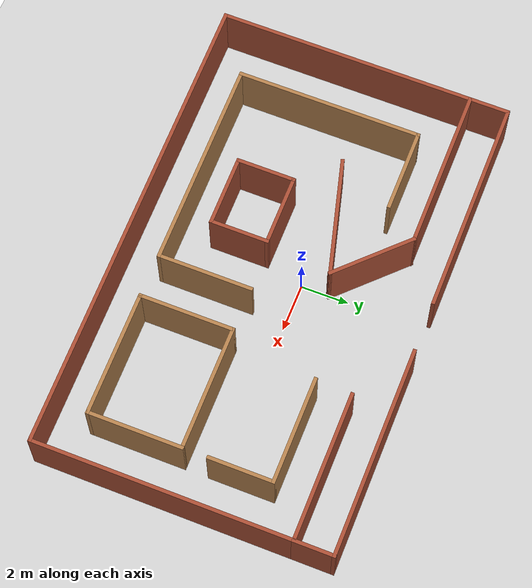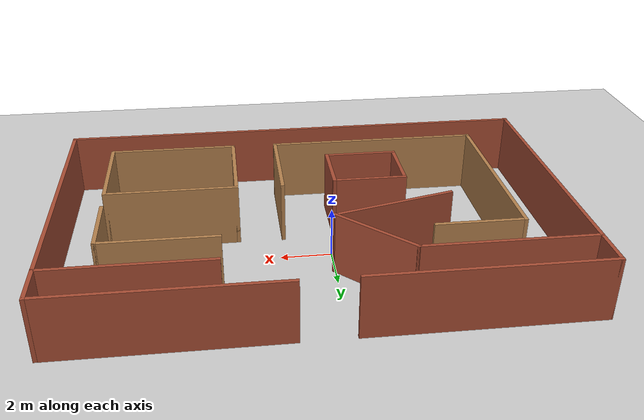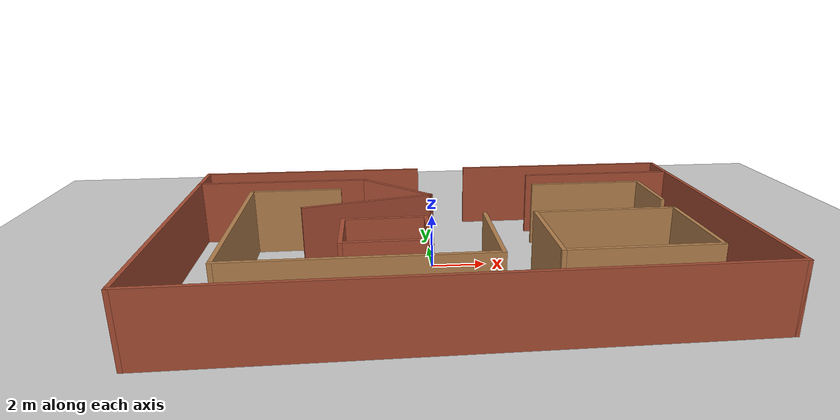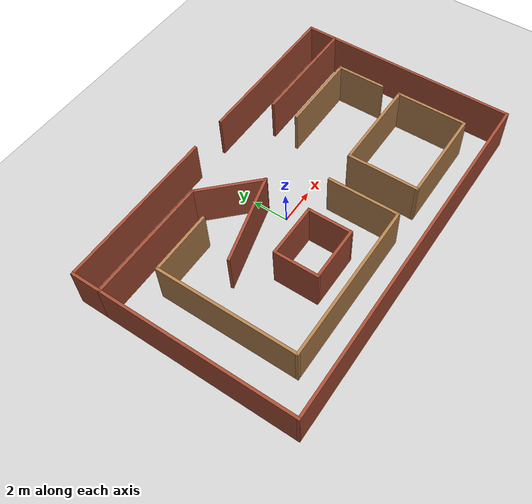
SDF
<sdf version="1.7">
 <world name="default">
  <scene><ambient>0.4 0.4 0.4 1</ambient><background>0.7 0.7 0.7 1</background><shadows>1</shadows></scene>
  <light name="sun" type="directional">
   <pose>0 0 10 0 -0 0</pose>
   <diffuse>0.8 0.8 0.8 1</diffuse>
   <specular>0.2 0.2 0.2 1</specular>
   <attenuation>
    <range>1000</range>
    <constant>0.9</constant>
    <linear>0.01</linear>
    <quadratic>0.001</quadratic>
   </attenuation>
   <direction>-0.5 0.1 -0.9</direction>
   <spot><inner_angle>0</inner_angle><outer_angle>0</outer_angle><falloff>0</falloff></spot>
  </light>
  <model name="ground_plane">
   <static>1</static>
   <link name="link">
    <collision name="collision">
     <geometry><plane><normal>0 0 1</normal><size>100 100</size></plane></geometry>
     <surface>
      <contact><collide_bitmask>65535</collide_bitmask></contact>
      <friction><ode><mu>100</mu><mu2>50</mu2></ode></friction>
     </surface>
    </collision>
    <visual name="visual">
     <cast_shadows>0</cast_shadows>
     <geometry><plane><normal>0 0 1</normal><size>100 100</size></plane></geometry>
     <material>
      <script><uri>file://media/materials/scripts/gazebo.material</uri><name>Gazebo/Grey</name></script>
     </material>
    </visual>
   </link>
  </model>
  <physics type="ode">
   <real_time_update_rate>1000</real_time_update_rate>
   <max_step_size>0.001</max_step_size>
   <real_time_factor>1</real_time_factor>
   <ode>
    <solver>
     <type>quick</type>
     <iters>150</iters>
     <precon_iters>0</precon_iters>
     <sor>1.4</sor>
     <use_dynamic_moi_rescaling>1</use_dynamic_moi_rescaling>
    </solver>
    <constraints>
     <cfm>1e-05</cfm>
     <erp>0.2</erp>
     <contact_max_correcting_vel>2000</contact_max_correcting_vel>
     <contact_surface_layer>0.01</contact_surface_layer>
    </constraints>
   </ode>
  </physics>
  <gravity>0 0 -9.8</gravity>
  <magnetic_field>6e-06 2.3e-05 -4.2e-05</magnetic_field>
  <atmosphere type="adiabatic"/>
  <spherical_coordinates>
   <surface_model>EARTH_WGS84</surface_model>
   <latitude_deg>0</latitude_deg>
   <longitude_deg>0</longitude_deg>
   <elevation>0</elevation>
   <heading_deg>0</heading_deg>
  </spherical_coordinates>
  <model name="my_world_1">
   <pose>0.678708 -0.772248 0 0 -0 0</pose>
   <link name="Wall_10">
    <collision name="Wall_10_Collision">
     <geometry><box><size>10.75 0.15 2.5</size></box></geometry>
     <pose>0 0 1.25 0 -0 0</pose>
    </collision>
    <visual name="Wall_10_Visual">
     <pose>0 0 1.25 0 -0 0</pose>
     <geometry><box><size>10.75 0.15 2.5</size></box></geometry>
     <material>
      <script><uri>file://media/materials/scripts/gazebo.material</uri><name>Gazebo/Bricks</name></script>
      <ambient>1 1 1 1</ambient>
     </material>
     <meta><layer>0</layer></meta>
    </visual>
    <pose>9.8 -0.8 0 0 -0 1.5708</pose>
   </link>
   <link name="Wall_12">
    <collision name="Wall_12_Collision">
     <geometry><box><size>6.75 0.15 2.5</size></box></geometry>
     <pose>0 0 1.25 0 -0 0</pose>
    </collision>
    <visual name="Wall_12_Visual">
     <pose>0 0 1.25 0 -0 0</pose>
     <geometry><box><size>6.75 0.15 2.5</size></box></geometry>
     <material>
      <script><uri>file://media/materials/scripts/gazebo.material</uri><name>Gazebo/Bricks</name></script>
      <ambient>1 1 1 1</ambient>
     </material>
     <meta><layer>0</layer></meta>
    </visual>
    <pose>-6.5 4.5 0 0 -0 0</pose>
   </link>
   <link name="Wall_14">
    <collision name="Wall_14_Collision">
     <geometry><box><size>6.25 0.15 2.5</size></box></geometry>
     <pose>0 0 1.25 0 -0 0</pose>
    </collision>
    <visual name="Wall_14_Visual">
     <pose>0 0 1.25 0 -0 0</pose>
     <geometry><box><size>6.25 0.15 2.5</size></box></geometry>
     <material>
      <script><uri>file://media/materials/scripts/gazebo.material</uri><name>Gazebo/Bricks</name></script>
      <ambient>1 1 1 1</ambient>
     </material>
     <meta><layer>0</layer></meta>
    </visual>
    <pose>6.75 4.5 0 0 -0 3.14159</pose>
   </link>
   <link name="Wall_16">
    <collision name="Wall_16_Collision">
     <geometry><box><size>3.75 0.15 2.5</size></box></geometry>
     <pose>0 0 1.25 0 -0 0</pose>
    </collision>
    <visual name="Wall_16_Visual">
     <pose>0 0 1.25 0 -0 0</pose>
     <geometry><box><size>3.75 0.15 2.5</size></box></geometry>
     <material>
      <script><uri>file://media/materials/scripts/gazebo.material</uri><name>Gazebo/Bricks</name></script>
      <ambient>1 1 1 1</ambient>
     </material>
     <meta><layer>0</layer></meta>
    </visual>
    <pose>-1.92721 3.22721 0 0 -0 -0.785398</pose>
   </link>
   <link name="Wall_17">
    <collision name="Wall_17_Collision">
     <geometry><box><size>5 0.15 2.5</size></box></geometry>
     <pose>0 0 1.25 0 -0 0</pose>
    </collision>
    <visual name="Wall_17_Visual">
     <pose>0 0 1.25 0 -0 0</pose>
     <geometry><box><size>5 0.15 2.5</size></box></geometry>
     <material>
      <script><uri>file://media/materials/scripts/gazebo.material</uri><name>Gazebo/Bricks</name></script>
      <ambient>1 1 1 1</ambient>
     </material>
     <meta><layer>0</layer></meta>
    </visual>
    <pose>-2.99679 1.32678 0 0 -0 -2.87979</pose>
   </link>
   <link name="Wall_19">
    <collision name="Wall_19_Collision">
     <geometry><box><size>4.5 0.15 2.5</size></box></geometry>
     <pose>0 0 1.25 0 -0 0</pose>
    </collision>
    <visual name="Wall_19_Visual">
     <pose>0 0 1.25 0 -0 0</pose>
     <geometry><box><size>4.5 0.15 2.5</size></box></geometry>
     <material>
      <script><uri>file://media/materials/scripts/gazebo.material</uri><name>Gazebo/Wood</name></script>
      <ambient>1 1 1 1</ambient>
     </material>
     <meta><layer>0</layer></meta>
    </visual>
    <pose>5.81402 2.99211 0 0 -0 0</pose>
   </link>
   <link name="Wall_20">
    <collision name="Wall_20_Collision">
     <geometry><box><size>2.75 0.15 2.5</size></box></geometry>
     <pose>0 0 1.25 0 -0 0</pose>
    </collision>
    <visual name="Wall_20_Visual">
     <pose>0 0 1.25 0 -0 0</pose>
     <geometry><box><size>2.75 0.15 2.5</size></box></geometry>
     <material>
      <script><uri>file://media/materials/scripts/gazebo.material</uri><name>Gazebo/Wood</name></script>
      <ambient>1 1 1 1</ambient>
     </material>
     <meta><layer>0</layer></meta>
    </visual>
    <pose>7.98902 1.69211 0 0 -0 -1.5708</pose>
   </link>
   <link name="Wall_22">
    <collision name="Wall_22_Collision">
     <geometry><box><size>4 0.15 2.5</size></box></geometry>
     <pose>0 0 1.25 0 -0 0</pose>
    </collision>
    <visual name="Wall_22_Visual">
     <pose>0 0 1.25 0 -0 0</pose>
     <geometry><box><size>4 0.15 2.5</size></box></geometry>
     <material>
      <script><uri>file://media/materials/scripts/gazebo.material</uri><name>Gazebo/Wood</name></script>
      <ambient>1 1 1 1</ambient>
     </material>
     <meta><layer>0</layer></meta>
    </visual>
    <pose>8.00145 -2.60372 0 0 -0 -1.5708</pose>
   </link>
   <link name="Wall_23">
    <collision name="Wall_23_Collision">
     <geometry><box><size>5.25 0.15 2.5</size></box></geometry>
     <pose>0 0 1.25 0 -0 0</pose>
    </collision>
    <visual name="Wall_23_Visual">
     <pose>0 0 1.25 0 -0 0</pose>
     <geometry><box><size>5.25 0.15 2.5</size></box></geometry>
     <material>
      <script><uri>file://media/materials/scripts/gazebo.material</uri><name>Gazebo/Wood</name></script>
      <ambient>1 1 1 1</ambient>
     </material>
     <meta><layer>0</layer></meta>
    </visual>
    <pose>5.45145 -4.52872 0 0 -0 3.14159</pose>
   </link>
   <link name="Wall_24">
    <collision name="Wall_24_Collision">
     <geometry><box><size>4 0.15 2.5</size></box></geometry>
     <pose>0 0 1.25 0 -0 0</pose>
    </collision>
    <visual name="Wall_24_Visual">
     <pose>0 0 1.25 0 -0 0</pose>
     <geometry><box><size>4 0.15 2.5</size></box></geometry>
     <material>
      <script><uri>file://media/materials/scripts/gazebo.material</uri><name>Gazebo/Wood</name></script>
      <ambient>1 1 1 1</ambient>
     </material>
     <meta><layer>0</layer></meta>
    </visual>
    <pose>2.90145 -2.60372 0 0 -0 1.5708</pose>
   </link>
   <link name="Wall_25">
    <collision name="Wall_25_Collision">
     <geometry><box><size>5.25 0.15 2.5</size></box></geometry>
     <pose>0 0 1.25 0 -0 0</pose>
    </collision>
    <visual name="Wall_25_Visual">
     <pose>0 0 1.25 0 -0 0</pose>
     <geometry><box><size>5.25 0.15 2.5</size></box></geometry>
     <material>
      <script><uri>file://media/materials/scripts/gazebo.material</uri><name>Gazebo/Wood</name></script>
      <ambient>1 1 1 1</ambient>
     </material>
     <meta><layer>0</layer></meta>
    </visual>
    <pose>5.45145 -0.67872 0 0 -0 0</pose>
   </link>
   <link name="Wall_27">
    <collision name="Wall_27_Collision">
     <geometry><box><size>4 0.15 2.5</size></box></geometry>
     <pose>0 0 1.25 0 -0 0</pose>
    </collision>
    <visual name="Wall_27_Visual">
     <pose>0 0 1.25 0 -0 0</pose>
     <geometry><box><size>4 0.15 2.5</size></box></geometry>
     <material>
      <script><uri>file://media/materials/scripts/gazebo.material</uri><name>Gazebo/Wood</name></script>
      <ambient>1 1 1 1</ambient>
     </material>
     <meta><layer>0</layer></meta>
    </visual>
    <pose>1.0854 -2.57712 0 0 -0 -1.5708</pose>
   </link>
   <link name="Wall_28">
    <collision name="Wall_28_Collision">
     <geometry><box><size>8.75 0.15 2.5</size></box></geometry>
     <pose>0 0 1.25 0 -0 0</pose>
    </collision>
    <visual name="Wall_28_Visual">
     <pose>0 0 1.25 0 -0 0</pose>
     <geometry><box><size>8.75 0.15 2.5</size></box></geometry>
     <material>
      <script><uri>file://media/materials/scripts/gazebo.material</uri><name>Gazebo/Wood</name></script>
      <ambient>1 1 1 1</ambient>
     </material>
     <meta><layer>0</layer></meta>
    </visual>
    <pose>-3.2146 -4.50212 0 0 -0 3.14159</pose>
   </link>
   <link name="Wall_29">
    <collision name="Wall_29_Collision">
     <geometry><box><size>7.75 0.15 2.5</size></box></geometry>
     <pose>0 0 1.25 0 -0 0</pose>
    </collision>
    <visual name="Wall_29_Visual">
     <pose>0 0 1.25 0 -0 0</pose>
     <geometry><box><size>7.75 0.15 2.5</size></box></geometry>
     <material>
      <script><uri>file://media/materials/scripts/gazebo.material</uri><name>Gazebo/Wood</name></script>
      <ambient>1 1 1 1</ambient>
     </material>
     <meta><layer>0</layer></meta>
    </visual>
    <pose>-7.5146 -0.70212 0 0 -0 1.5708</pose>
   </link>
   <link name="Wall_30">
    <collision name="Wall_30_Collision">
     <geometry><box><size>3.5 0.15 2.5</size></box></geometry>
     <pose>0 0 1.25 0 -0 0</pose>
    </collision>
    <visual name="Wall_30_Visual">
     <pose>0 0 1.25 0 -0 0</pose>
     <geometry><box><size>3.5 0.15 2.5</size></box></geometry>
     <material>
      <script><uri>file://media/materials/scripts/gazebo.material</uri><name>Gazebo/Wood</name></script>
      <ambient>1 1 1 1</ambient>
     </material>
     <meta><layer>0</layer></meta>
    </visual>
    <pose>-5.8396 3.09788 0 0 -0 0</pose>
   </link>
   <link name="Wall_32">
    <collision name="Wall_32_Collision">
     <geometry><box><size>2.5 0.15 2.5</size></box></geometry>
     <pose>0 0 1.25 0 -0 0</pose>
    </collision>
    <visual name="Wall_32_Visual">
     <pose>0 0 1.25 0 -0 0</pose>
     <geometry><box><size>2.5 0.15 2.5</size></box></geometry>
     <material>
      <script><uri>file://media/materials/scripts/gazebo.material</uri><name>Gazebo/Bricks</name></script>
      <ambient>1 1 1 1</ambient>
     </material>
     <meta><layer>0</layer></meta>
    </visual>
    <pose>-3.86224 -1.98672 0 0 -0 -1.5708</pose>
   </link>
   <link name="Wall_33">
    <collision name="Wall_33_Collision">
     <geometry><box><size>3 0.15 2.5</size></box></geometry>
     <pose>0 0 1.25 0 -0 0</pose>
    </collision>
    <visual name="Wall_33_Visual">
     <pose>0 0 1.25 0 -0 0</pose>
     <geometry><box><size>3 0.15 2.5</size></box></geometry>
     <material>
      <script><uri>file://media/materials/scripts/gazebo.material</uri><name>Gazebo/Bricks</name></script>
      <ambient>1 1 1 1</ambient>
     </material>
     <meta><layer>0</layer></meta>
    </visual>
    <pose>-2.43723 -3.16172 0 0 -0 0</pose>
   </link>
   <link name="Wall_34">
    <collision name="Wall_34_Collision">
     <geometry><box><size>2.5 0.15 2.5</size></box></geometry>
     <pose>0 0 1.25 0 -0 0</pose>
    </collision>
    <visual name="Wall_34_Visual">
     <pose>0 0 1.25 0 -0 0</pose>
     <geometry><box><size>2.5 0.15 2.5</size></box></geometry>
     <material>
      <script><uri>file://media/materials/scripts/gazebo.material</uri><name>Gazebo/Bricks</name></script>
      <ambient>1 1 1 1</ambient>
     </material>
     <meta><layer>0</layer></meta>
    </visual>
    <pose>-1.01223 -1.98672 0 0 -0 1.5708</pose>
   </link>
   <link name="Wall_35">
    <collision name="Wall_35_Collision">
     <geometry><box><size>3 0.15 2.5</size></box></geometry>
     <pose>0 0 1.25 0 -0 0</pose>
    </collision>
    <visual name="Wall_35_Visual">
     <pose>0 0 1.25 0 -0 0</pose>
     <geometry><box><size>3 0.15 2.5</size></box></geometry>
     <material>
      <script><uri>file://media/materials/scripts/gazebo.material</uri><name>Gazebo/Bricks</name></script>
      <ambient>1 1 1 1</ambient>
     </material>
     <meta><layer>0</layer></meta>
    </visual>
    <pose>-2.43723 -0.811721 0 0 -0 3.14159</pose>
   </link>
   <link name="Wall_37">
    <collision name="Wall_37_Collision">
     <geometry><box><size>1.75 0.15 2.5</size></box></geometry>
     <pose>0 0 1.25 0 -0 0</pose>
    </collision>
    <visual name="Wall_37_Visual">
     <pose>0 0 1.25 0 -0 0</pose>
     <geometry><box><size>1.75 0.15 2.5</size></box></geometry>
     <material>
      <script><uri>file://media/materials/scripts/gazebo.material</uri><name>Gazebo/Bricks</name></script>
      <ambient>1 1 1 1</ambient>
     </material>
     <meta><layer>0</layer></meta>
    </visual>
    <pose>-9.8 5.3 0 0 -0 1.5708</pose>
   </link>
   <link name="Wall_38">
    <collision name="Wall_38_Collision">
     <geometry><box><size>9 0.15 2.5</size></box></geometry>
     <pose>0 0 1.25 0 -0 0</pose>
    </collision>
    <visual name="Wall_38_Visual">
     <pose>0 0 1.25 0 -0 0</pose>
     <geometry><box><size>9 0.15 2.5</size></box></geometry>
     <material>
      <script><uri>file://media/materials/scripts/gazebo.material</uri><name>Gazebo/Bricks</name></script>
      <ambient>1 1 1 1</ambient>
     </material>
     <meta><layer>0</layer></meta>
    </visual>
    <pose>-5.375 6.1 0 0 -0 0</pose>
   </link>
   <link name="Wall_41">
    <collision name="Wall_41_Collision">
     <geometry><box><size>1.75 0.15 2.5</size></box></geometry>
     <pose>0 0 1.25 0 -0 0</pose>
    </collision>
    <visual name="Wall_41_Visual">
     <pose>0 0 1.25 0 -0 0</pose>
     <geometry><box><size>1.75 0.15 2.5</size></box></geometry>
     <material>
      <script><uri>file://media/materials/scripts/gazebo.material</uri><name>Gazebo/Bricks</name></script>
      <ambient>1 1 1 1</ambient>
     </material>
     <meta><layer>0</layer></meta>
    </visual>
    <pose>9.8 5.3 0 0 -0 1.5708</pose>
   </link>
   <link name="Wall_42">
    <collision name="Wall_42_Collision">
     <geometry><box><size>8.75 0.15 2.5</size></box></geometry>
     <pose>0 0 1.25 0 -0 0</pose>
    </collision>
    <visual name="Wall_42_Visual">
     <pose>0 0 1.25 0 -0 0</pose>
     <geometry><box><size>8.75 0.15 2.5</size></box></geometry>
     <material>
      <script><uri>file://media/materials/scripts/gazebo.material</uri><name>Gazebo/Bricks</name></script>
      <ambient>1 1 1 1</ambient>
     </material>
     <meta><layer>0</layer></meta>
    </visual>
    <pose>5.5 6.1 0 0 -0 3.14159</pose>
   </link>
   <link name="Wall_6">
    <collision name="Wall_6_Collision">
     <geometry><box><size>10.75 0.15 2.5</size></box></geometry>
     <pose>0 0 1.25 0 -0 0</pose>
    </collision>
    <visual name="Wall_6_Visual">
     <pose>0 0 1.25 0 -0 0</pose>
     <geometry><box><size>10.75 0.15 2.5</size></box></geometry>
     <material>
      <script><uri>file://media/materials/scripts/gazebo.material</uri><name>Gazebo/Bricks</name></script>
      <ambient>1 1 1 1</ambient>
     </material>
     <meta><layer>0</layer></meta>
    </visual>
    <pose>-9.8 -0.8 0 0 -0 1.5708</pose>
   </link>
   <link name="Wall_9">
    <collision name="Wall_9_Collision">
     <geometry><box><size>19.75 0.15 2.5</size></box></geometry>
     <pose>0 0 1.25 0 -0 0</pose>
    </collision>
    <visual name="Wall_9_Visual">
     <pose>0 0 1.25 0 -0 0</pose>
     <geometry><box><size>19.75 0.15 2.5</size></box></geometry>
     <material>
      <script><uri>file://media/materials/scripts/gazebo.material</uri><name>Gazebo/Bricks</name></script>
      <ambient>1 1 1 1</ambient>
     </material>
     <meta><layer>0</layer></meta>
    </visual>
    <pose>0 -6.1 0 0 -0 0</pose>
   </link>
   <static>1</static>
  </model>
 </world>
</sdf>
